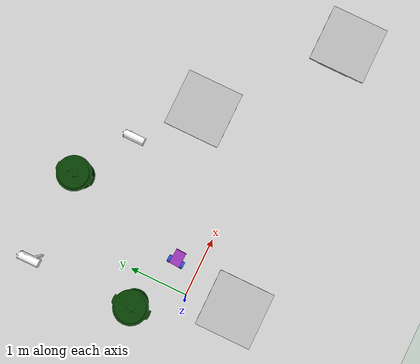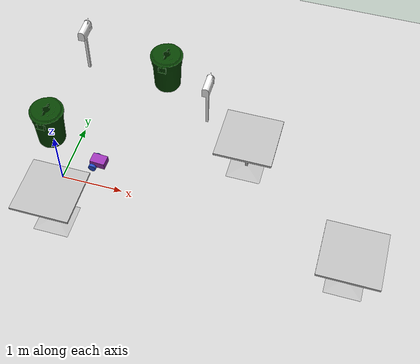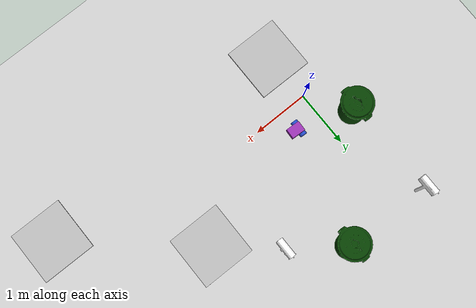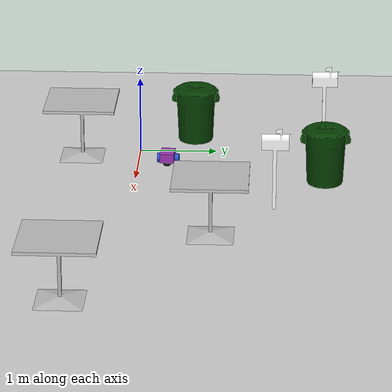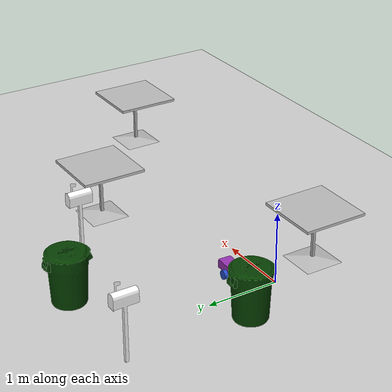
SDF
<sdf version="1.7">
 <world name="default">
  <light name="sun" type="directional">
   <pose>0 0 10 0 -0 0</pose>
   <diffuse>0.8 0.8 0.8 1</diffuse>
   <specular>0.2 0.2 0.2 1</specular>
   <attenuation>
    <range>1000</range>
    <constant>0.9</constant>
    <linear>0.01</linear>
    <quadratic>0.001</quadratic>
   </attenuation>
   <direction>-0.5 0.1 -0.9</direction>
   <spot><inner_angle>0</inner_angle><outer_angle>0</outer_angle><falloff>0</falloff></spot>
  </light>
  <model name="ground_plane">
   <static>1</static>
   <link name="link">
    <collision name="collision">
     <geometry><plane><normal>0 0 1</normal><size>100 100</size></plane></geometry>
     <surface><friction><ode><mu>100</mu><mu2>50</mu2></ode></friction></surface>
    </collision>
    <visual name="visual">
     <cast_shadows>0</cast_shadows>
     <geometry><plane><normal>0 0 1</normal><size>100 100</size></plane></geometry>
     <material>
      <script><uri>file://media/materials/scripts/gazebo.material</uri><name>Gazebo/Grey</name></script>
     </material>
    </visual>
   </link>
  </model>
  <gravity>0 0 -9.8</gravity>
  <magnetic_field>6e-06 2.3e-05 -4.2e-05</magnetic_field>
  <atmosphere type="adiabatic"/>
  <physics type="ode">
   <max_step_size>0.001</max_step_size>
   <real_time_factor>1</real_time_factor>
   <real_time_update_rate>1000</real_time_update_rate>
  </physics>
  <scene><ambient>0.4 0.4 0.4 1</ambient><background>0.7 0.7 0.7 1</background><shadows>1</shadows></scene>
  <audio><device>default</device></audio>
  <spherical_coordinates>
   <surface_model>EARTH_WGS84</surface_model>
   <latitude_deg>0</latitude_deg>
   <longitude_deg>0</longitude_deg>
   <elevation>0</elevation>
   <heading_deg>0</heading_deg>
  </spherical_coordinates>
  <model name="BBB_robot">
   <link name="base_footprint">
    <inertial>
     <pose>0.01 0 0.1125 0 -0 0</pose>
     <mass>0.6</mass>
     <inertia>
      <ixx>0.00514375</ixx>
      <ixy>0</ixy>
      <ixz>0.0003</ixz>
      <iyy>0.00544375</iyy>
      <iyz>0</iyz>
      <izz>0.00795625</izz>
     </inertia>
    </inertial>
    <collision name="base_footprint_fixed_joint_lump__base_link_collision">
     <pose>0 0 0.1225 0 -0 0</pose>
     <geometry><box><size>0 0.18 0.12</size></box></geometry>
    </collision>
    <collision name="base_footprint_fixed_joint_lump__caster_wheel_link_collision_1">
     <pose>0.06 0 0.0625 0 -0 0</pose>
     <geometry><sphere><radius>0.0625</radius></sphere></geometry>
     <surface><friction><ode><mu>0.002</mu><mu2>0.002</mu2></ode></friction></surface>
    </collision>
    <visual name="base_footprint_fixed_joint_lump__base_link_visual">
     <pose>0 0 0.1225 0 -0 0</pose>
     <geometry><box><size>0.25 0.18 0.12</size></box></geometry>
     <material>
      <script><name>Gazebo/Purple</name><uri>file://media/materials/scripts/gazebo.material</uri></script>
     </material>
    </visual>
    <visual name="base_footprint_fixed_joint_lump__caster_wheel_link_visual_1">
     <pose>0.06 0 0.0625 0 -0 0</pose>
     <geometry><sphere><radius>0.0625</radius></sphere></geometry>
     <material>
      <script><name>Gazebo/Black</name><uri>file://media/materials/scripts/gazebo.material</uri></script>
     </material>
    </visual>
   </link>
   <joint name="left_wheel_back_joint" type="revolute">
    <pose relative_to="base_footprint">-0.075 0.116 0.0625 -1.5708 0 0</pose>
    <parent>base_footprint</parent>
    <child>left_wheel_back_link</child>
    <axis>
     <xyz>0 0 1</xyz>
     <limit><lower>-1e+16</lower><upper>1e+16</upper></limit>
     <dynamics><spring_reference>0</spring_reference><spring_stiffness>0</spring_stiffness></dynamics>
    </axis>
   </joint>
   <link name="left_wheel_back_link">
    <pose relative_to="left_wheel_back_joint">0 0 0 0 -0 0</pose>
    <inertial>
     <mass>0.1</mass>
     <inertia>
      <ixx>7.58333e-05</ixx>
      <ixy>0</ixy>
      <ixz>0</ixz>
      <iyy>7.58333e-05</iyy>
      <iyz>0</iyz>
      <izz>0.000125</izz>
     </inertia>
    </inertial>
    <collision name="left_wheel_back_link_collision">
     <geometry><cylinder><length>0.05132</length><radius>0.0625</radius></cylinder></geometry>
    </collision>
    <visual name="left_wheel_back_link_visual">
     <geometry><cylinder><length>0.05132</length><radius>0.0625</radius></cylinder></geometry>
     <material>
      <script><name>Gazebo/Blue</name><uri>file://media/materials/scripts/gazebo.material</uri></script>
     </material>
    </visual>
   </link>
   <joint name="right_wheel_back_joint" type="revolute">
    <pose relative_to="base_footprint">-0.075 -0.116 0.0625 1.5708 -0 0</pose>
    <parent>base_footprint</parent>
    <child>right_wheel_back_link</child>
    <axis>
     <xyz>0 0 -1</xyz>
     <limit><lower>-1e+16</lower><upper>1e+16</upper></limit>
     <dynamics><spring_reference>0</spring_reference><spring_stiffness>0</spring_stiffness></dynamics>
    </axis>
   </joint>
   <link name="right_wheel_back_link">
    <pose relative_to="right_wheel_back_joint">0 0 0 0 -0 0</pose>
    <inertial>
     <mass>0.1</mass>
     <inertia>
      <ixx>7.58333e-05</ixx>
      <ixy>0</ixy>
      <ixz>0</ixz>
      <iyy>7.58333e-05</iyy>
      <iyz>0</iyz>
      <izz>0.000125</izz>
     </inertia>
    </inertial>
    <collision name="right_wheel_back_link_collision">
     <geometry><cylinder><length>0.05132</length><radius>0.0625</radius></cylinder></geometry>
    </collision>
    <visual name="right_wheel_back_link_visual">
     <geometry><cylinder><length>0.05132</length><radius>0.0625</radius></cylinder></geometry>
     <material>
      <script><name>Gazebo/Blue</name><uri>file://media/materials/scripts/gazebo.material</uri></script>
     </material>
    </visual>
   </link>
   <static>0</static>
   <plugin name="diff_drive" filename="libgazebo_ros_diff_drive.so">
    <left_joint>left_wheel_back_joint</left_joint>
    <right_joint>right_wheel_back_joint</right_joint>
    <wheel_separation>0.232</wheel_separation>
    <wheel_diameter>0.125</wheel_diameter>
    <max_wheel_torque>200</max_wheel_torque>
    <max_wheel_acceleration>10.0</max_wheel_acceleration>
    <odometry_frame>odom</odometry_frame>
    <robot_base_frame>base_footprint</robot_base_frame>
    <publish_odom>1</publish_odom>
    <publish_odom_tf>1</publish_odom_tf>
    <publish_wheel_tf>1</publish_wheel_tf>
   </plugin>
   <pose>0.49361 0.381982 -1e-06 0 1.9e-05 -0.050108</pose>
  </model>
  <model name="first_2015_trash_can">
   <link name="link">
    <inertial>
     <pose>0 0 0.3683 0 -0 0</pose>
     <mass>4.83076</mass>
     <inertia>
      <ixx>0.281534</ixx>
      <ixy>0</ixy>
      <ixz>0</ixz>
      <iyy>0.281534</iyy>
      <iyz>0</iyz>
      <izz>0.126223</izz>
     </inertia>
    </inertial>
    <visual name="visual">
     <geometry><mesh><uri>model://first_2015_trash_can/meshes/trash_can.dae</uri></mesh></geometry>
    </visual>
    <collision name="collision">
     <geometry><mesh><uri>model://first_2015_trash_can/meshes/trash_can.dae</uri></mesh></geometry>
    </collision>
   </link>
   <pose>-0.468832 0.706289 -6e-06 5e-06 2.5e-05 -0.000936</pose>
  </model>
  <model name="Mailbox">
   <link name="link">
    <collision name="collision">
     <geometry><mesh><uri>model://mailbox/meshes/mailbox.dae</uri></mesh></geometry>
    </collision>
    <visual name="visual">
     <geometry><mesh><uri>model://mailbox/meshes/mailbox.dae</uri></mesh></geometry>
     <material>
      <script>
       <uri>model://mailbox/materials/scripts</uri>
       <uri>model://mailbox/materials/textures</uri>
       <name>Mailbox/Diffuse</name>
      </script>
     </material>
    </visual>
    <inertial>
     <inertia><ixx>1</ixx><ixy>0</ixy><ixz>0</ixz><iyy>1</iyy><iyz>0</iyz><izz>1</izz></inertia>
     <mass>1</mass>
    </inertial>
   </link>
   <pose>-0.450067 2.41347 -1e-05 -1.1e-05 1e-06 0</pose>
  </model>
  <light name="sun" type="directional">
   <pose>-0.252267 3.7281 10 0 -0 0</pose>
   <diffuse>0.8 0.8 0.8 1</diffuse>
   <specular>0.2 0.2 0.2 1</specular>
   <attenuation>
    <range>1000</range>
    <constant>0.9</constant>
    <linear>0.01</linear>
    <quadratic>0.001</quadratic>
   </attenuation>
   <direction>-0.5 0.1 -0.9</direction>
  </light>
  <model name="cafe_table">
   <static>1</static>
   <link name="link">
    <collision name="surface">
     <pose>0 0 0.755 0 -0 0</pose>
     <geometry><box><size>0.913 0.913 0.04</size></box></geometry>
    </collision>
    <collision name="column">
     <pose>0 0 0.37 0 -0 0</pose>
     <geometry><box><size>0.042 0.042 0.74</size></box></geometry>
    </collision>
    <collision name="base">
     <pose>0 0 0.02 0 -0 0</pose>
     <geometry><box><size>0.56 0.56 0.04</size></box></geometry>
    </collision>
    <visual name="visual">
     <geometry><mesh><uri>model://cafe_table/meshes/cafe_table.dae</uri></mesh></geometry>
    </visual>
   </link>
   <pose>4.69191 -0.577738 0 0 -0 0</pose>
  </model>
  <model name="Mailbox_0">
   <link name="link">
    <collision name="collision">
     <geometry><mesh><uri>model://mailbox/meshes/mailbox.dae</uri></mesh></geometry>
    </collision>
    <visual name="visual">
     <geometry><mesh><uri>model://mailbox/meshes/mailbox.dae</uri></mesh></geometry>
     <material>
      <script>
       <uri>model://mailbox/materials/scripts</uri>
       <uri>model://mailbox/materials/textures</uri>
       <name>Mailbox/Diffuse</name>
      </script>
     </material>
    </visual>
    <inertial>
     <inertia><ixx>1</ixx><ixy>0</ixy><ixz>0</ixz><iyy>1</iyy><iyz>0</iyz><izz>1</izz></inertia>
     <mass>1</mass>
    </inertial>
   </link>
   <pose>1.92237 1.7789 0 -1.1e-05 1e-06 0</pose>
  </model>
  <model name="cafe_table_0">
   <static>1</static>
   <link name="link">
    <collision name="surface">
     <pose>0 0 0.755 0 -0 0</pose>
     <geometry><box><size>0.913 0.913 0.04</size></box></geometry>
    </collision>
    <collision name="column">
     <pose>0 0 0.37 0 -0 0</pose>
     <geometry><box><size>0.042 0.042 0.74</size></box></geometry>
    </collision>
    <collision name="base">
     <pose>0 0 0.02 0 -0 0</pose>
     <geometry><box><size>0.56 0.56 0.04</size></box></geometry>
    </collision>
    <visual name="visual">
     <geometry><mesh><uri>model://cafe_table/meshes/cafe_table.dae</uri></mesh></geometry>
    </visual>
   </link>
   <pose>2.80025 1.02864 0 0 -0 0</pose>
  </model>
  <model name="first_2015_trash_can_0">
   <link name="link">
    <inertial>
     <pose>0 0 0.3683 0 -0 0</pose>
     <mass>4.83076</mass>
     <inertia>
      <ixx>0.281534</ixx>
      <ixy>0</ixy>
      <ixz>0</ixz>
      <iyy>0.281534</iyy>
      <iyz>0</iyz>
      <izz>0.126223</izz>
     </inertia>
    </inertial>
    <visual name="visual">
     <geometry><mesh><uri>model://first_2015_trash_can/meshes/trash_can.dae</uri></mesh></geometry>
    </visual>
    <collision name="collision">
     <geometry><mesh><uri>model://first_2015_trash_can/meshes/trash_can.dae</uri></mesh></geometry>
    </collision>
   </link>
   <pose>1.02357 2.41423 -5e-06 8e-06 2e-05 -8.4e-05</pose>
  </model>
  <model name="cafe_table_1">
   <static>1</static>
   <link name="link">
    <collision name="surface">
     <pose>0 0 0.755 0 -0 0</pose>
     <geometry><box><size>0.913 0.913 0.04</size></box></geometry>
    </collision>
    <collision name="column">
     <pose>0 0 0.37 0 -0 0</pose>
     <geometry><box><size>0.042 0.042 0.74</size></box></geometry>
    </collision>
    <collision name="base">
     <pose>0 0 0.02 0 -0 0</pose>
     <geometry><box><size>0.56 0.56 0.04</size></box></geometry>
    </collision>
    <visual name="visual">
     <geometry><mesh><uri>model://cafe_table/meshes/cafe_table.dae</uri></mesh></geometry>
    </visual>
   </link>
   <pose>0.211126 -0.751478 0 0 -0 0</pose>
  </model>
 </world>
</sdf>
